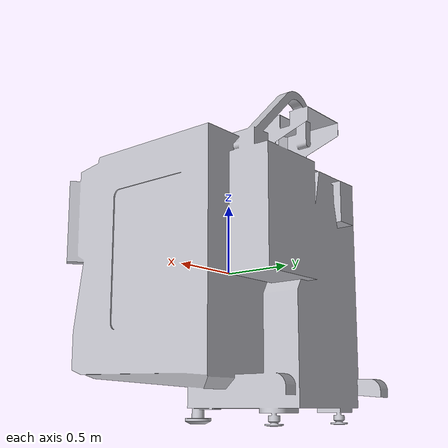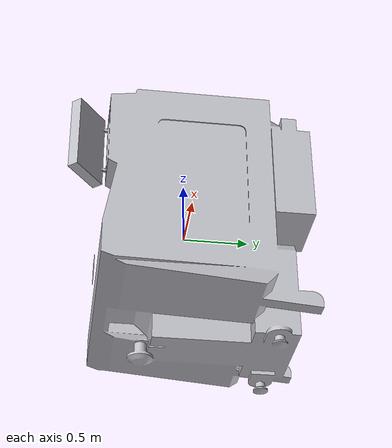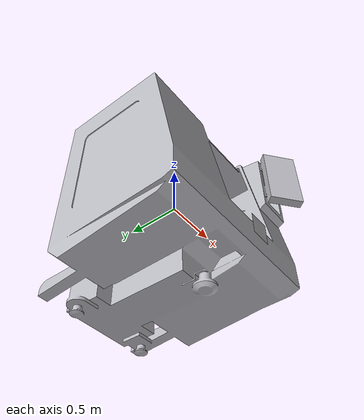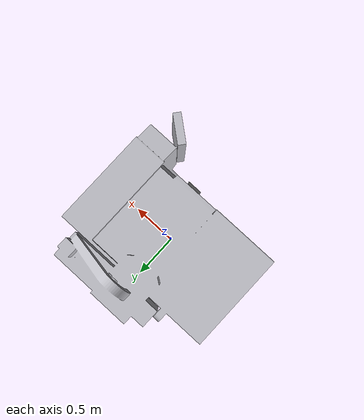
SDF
<?xml version="1.0"?>
<sdf version="1.6">
  <model name="cnc_urdf">
    <static>true</static>

    <link name="base_link">
      <pose>0 0 0 0 0 0</pose>

      <!-- Whole CNC assembly -->
      <visual name="cnc_visual">
        <geometry>
          <mesh>
            <uri>model://cnc_urdf/meshes/base_link.dae</uri>
          </mesh>
        </geometry>
        <!-- Improve readability: brighter diffuse + some specular highlight -->
        <material>
          <ambient>0.35 0.35 0.35 1</ambient>
          <diffuse>0.75 0.75 0.78 1</diffuse>
          <specular>0.25 0.25 0.25 1</specular>
          <emissive>0 0 0 1</emissive>
        </material>
        <cast_shadows>true</cast_shadows>
      </visual>

      <collision name="cnc_collision">
        <geometry>
          <mesh>
            <uri>model://cnc_urdf/meshes/base_link.dae</uri>
          </mesh>
        </geometry>
      </collision>

      <!-- AprilTag visuals (textured planes) -->
      <visual name="april0_tag_visual">
        <!-- from URDF april0_joint origin -->
        <!-- +Z 180deg and -Y 90deg relative rotation -->
        <pose>0.235 -0.692 -0.47097 0 -1.5708 1.5708</pose>
        <geometry>
          <mesh>
            <uri>model://cnc_urdf/meshes/april0_tag.dae</uri>
          </mesh>
        </geometry>
      </visual>

      <visual name="april1_tag_visual">
        <!-- from URDF april1_joint origin -->
        <!-- +Z 180deg and -Y 90deg relative rotation -->
        <pose>0.3181 0.488 0.2081 0 -1.5708 1.5708</pose>
        <geometry>
          <mesh>
            <uri>model://cnc_urdf/meshes/april1_tag.dae</uri>
          </mesh>
        </geometry>
      </visual>
    </link>
  </model>
</sdf>
